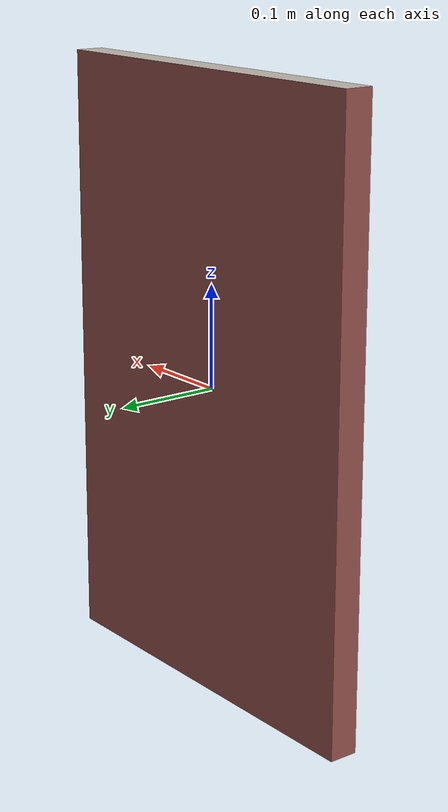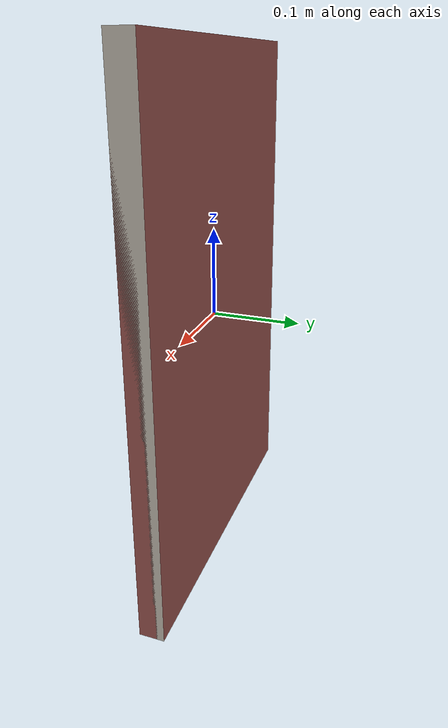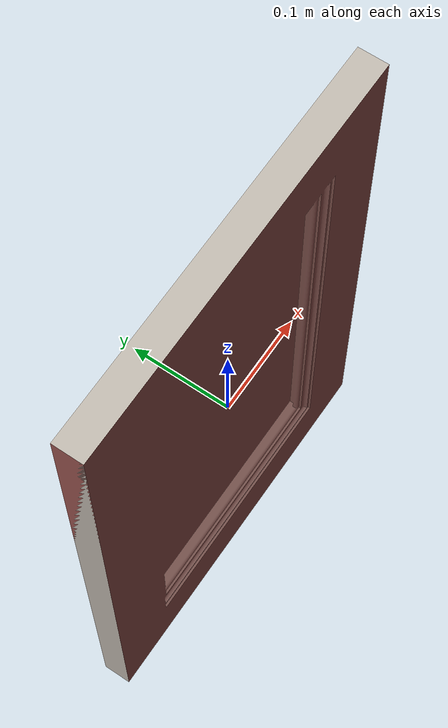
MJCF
<?xml version='1.0' encoding='UTF-8'?>
<mujoco model="model">
  <option timestep="0.002" gravity="0.0 0.0 -9.81"/>
  <compiler angle="radian"/>
  <asset>
    <mesh file="visuals/CabinetDoorPanel047.obj" name="CabinetDoorPanel047_vis"/>
    <texture file="visuals/T_BC001.png" name="tex" type="2d"/>
    <material name="mat" rgba="1 1 1 1.0" texture="tex" shininess="0.5" specular="0.3103448502657381"/>
  </asset>
  <default>
    <default class="visual">
      <geom conaffinity="0" contype="0" group="1" type="mesh"/>
    </default>
    <default class="collision">
      <geom group="0" rgba="0.5 0 0 0.5" density="1.0" solref="0.004 1" solimp="0.998 0.998 0.001"/>
    </default>
    <default class="spawn">
      <geom group="0" rgba="1 1 1 0.5" contype="0" conaffinity="0"/>
      <site group="0" rgba="1 1 1 0.5"/>
    </default>
    <default class="region">
      <geom group="1" conaffinity="0" contype="0" rgba="0 1 0 0" mass="0"/>
    </default>
  </default>
  <worldbody>
    <body>
      <body name="object">
        <geom mesh="CabinetDoorPanel047_vis" type="mesh" solimp="0.998 0.998 0.001" solref="0.001 1" friction="0.95 0.3 0.1" class="visual" material="mat"/>
        <geom type="box" pos="0.0 8.381903171539307e-08 -1.4901161193847656e-08" size="0.19541800022125244 0.01416420005261898 0.29808157682418823" quat="1.0 0.0 0.0 0.0" class="collision"/>
        <geom class="region" name="reg_main" type="box" pos="0.0 8.381903171539307e-08 -1.4901161193847656e-08" size="0.19541800022125244 0.01416420005261898 0.29808157682418823"/>
      </body>
    </body>
  </worldbody>
  <actuator/>
</mujoco>
